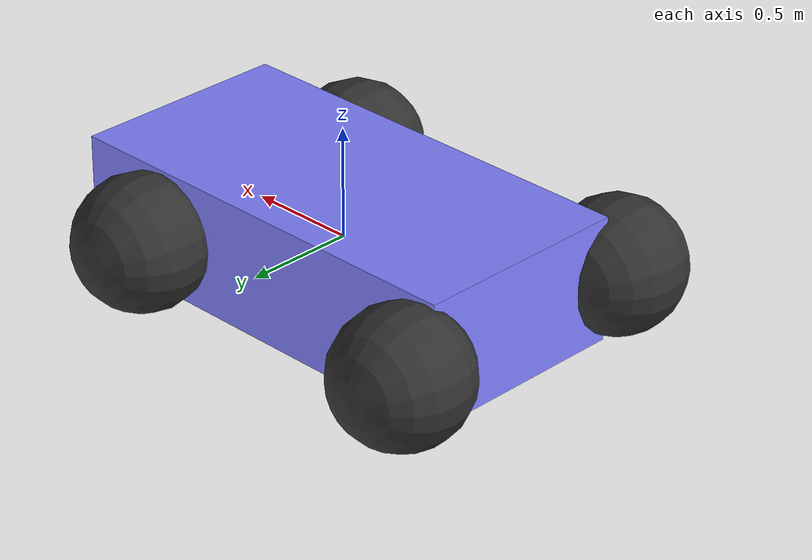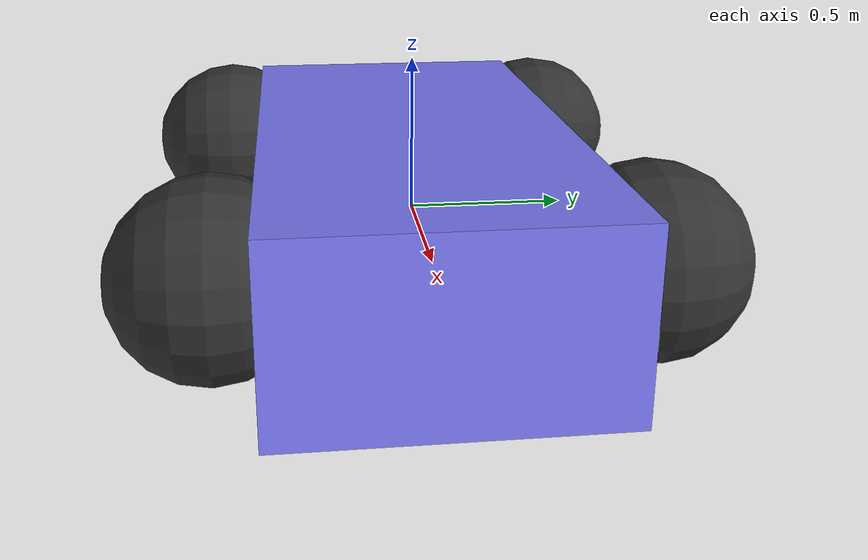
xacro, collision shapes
<?xml version="1.0"?>
<robot name="glados" xmlns:xacro="http://www.ros.org/wiki/xacro">

  <!-- Constants -->
  <xacro:property name="base_link_mass" value="1.14395"/>
  <xacro:property name="wheel_mass" value="2"/>
  <xacro:property name="wheel_radius" value="0.3"/>
  <xacro:property name="wheel_separation" value="1.25"/>
  <xacro:property name="wheelbase" value="1.511"/>

  <!-- base_link dimensions -->
  <xacro:property name="base_link_length" value="2.01142"/>
  <xacro:property name="base_link_width" value="1.0"/>
  <xacro:property name="base_link_height" value="0.568726"/>

  <!-- Positions -->
  <xacro:property name="base_link_offset_x" value="-0.151427"/>
  <xacro:property name="base_link_offset_z" value="0.175"/>
  <xacro:property name="wheel_offset_z" value="-0.025"/>

  <!-- Colors -->
  <xacro:property name="base_link_color_r" value="0.5"/>
  <xacro:property name="base_link_color_g" value="0.5"/>
  <xacro:property name="base_link_color_b" value="1.0"/>

  <!-- Wheel macros -->
  <xacro:macro name="wheel_inertia" params="mass radius">
    <inertial>
      <mass value="${mass}"/>
      <inertia
        ixx="${(mass/12.0) * (3*radius*radius)}"
        ixy="0"
        ixz="0"
        iyy="${(mass/12.0) * (3*radius*radius)}"
        iyz="0"
        izz="${(mass/2.0) * (radius*radius)}"/>
    </inertial>
  </xacro:macro>

  <!-- Base Footprint -->
  <link name="base_footprint"/>

  <!-- Base Link -->
  <link name="base_link">
    <inertial>
      <mass value="${base_link_mass}"/>
      <inertia
        ixx="0.126164"
        ixy="0"
        ixz="0"
        iyy="0.416519"
        iyz="0"
        izz="0.481014"/>
    </inertial>
    <visual>
      <geometry>
        <box size="${base_link_length} ${base_link_width} ${base_link_height}"/>
      </geometry>
      <material name="base_link_material">
        <color rgba="${base_link_color_r} ${base_link_color_g} ${base_link_color_b} 1"/>
      </material>
    </visual>
    <collision>
      <geometry>
        <box size="${base_link_length} ${base_link_width} ${base_link_height}"/>
      </geometry>
    </collision>
  </link>

  <joint name="base_link_to_base_footprint" type="fixed">
    <parent link="base_footprint"/>
    <child link="base_link"/>
  </joint>

  <!-- Wheel macro -->
  <xacro:macro name="mecanum_wheel" params="prefix side_prefix x y mesh_file fdir1_y">
    <link name="${prefix}_${side_prefix}_wheel">
      <xacro:wheel_inertia mass="${wheel_mass}" radius="${wheel_radius}"/>
      <visual>
        <origin xyz="0 0 0" rpy="1.5707 0 0"/>
        <geometry>
          <mesh filename="${mesh_file}" scale="0.006 0.006 0.006"/>
        </geometry>
        <material name="wheel_material">
          <color rgba="0.2 0.2 0.2 1"/>
        </material>
      </visual>
      <collision>
        <geometry>
          <sphere radius="${wheel_radius}"/>
        </geometry>
      </collision>
    </link>

    <joint name="${prefix}_${side_prefix}_wheel_joint" type="revolute">
      <parent link="base_link"/>
      <child link="${prefix}_${side_prefix}_wheel"/>
      <origin xyz="${x} ${y} 0" rpy="${-pi/2} 0 0"/>
      <axis xyz="0 0 1"/>
      <limit effort="30" velocity="1.0" lower="${-pi/2}" upper="${pi/2}"/>
    </joint>

    <!-- Gazebo-specific elements -->
    <gazebo reference="${prefix}_${side_prefix}_wheel">
      <material>Gazebo/Gray</material>
      <mu1 value="1.0"/>
      <mu2 value="0.0"/>
      <fdir1>${1} ${fdir1_y} 0</fdir1>
    </gazebo>
  </xacro:macro>

  <!-- Create wheels -->
  <xacro:mecanum_wheel prefix="front" side_prefix="left"
    x="0.554283" y="0.625029"
    mesh_file="package://glados_description/models/glados/meshes/mecanum_wheel_left.STL"
    fdir1_y="-1"/>

  <xacro:mecanum_wheel prefix="front" side_prefix="right"
    x="0.554282" y="-0.625029"
    mesh_file="package://glados_description/models/glados/meshes/mecanum_wheel_right.STL"
    fdir1_y="1"/>

  <xacro:mecanum_wheel prefix="rear" side_prefix="left"
    x="-0.957138" y="0.625029"
    mesh_file="package://glados_description/models/glados/meshes/mecanum_wheel_right.STL"
    fdir1_y="1"/>

  <xacro:mecanum_wheel prefix="rear" side_prefix="right"
    x="-0.957138" y="-0.625029"
    mesh_file="package://glados_description/models/glados/meshes/mecanum_wheel_left.STL"
    fdir1_y="-1"/>

  <!-- Gazebo plugin -->
  <gazebo>
    <plugin name="gz::sim::systems::MecanumDrive" filename="gz-sim-mecanum-drive-system">
      <front_left_joint>front_left_wheel_joint</front_left_joint>
      <front_right_joint>front_right_wheel_joint</front_right_joint>
      <back_left_joint>rear_left_wheel_joint</back_left_joint>
      <back_right_joint>rear_right_wheel_joint</back_right_joint>
      <wheel_separation>${wheel_separation}</wheel_separation>
      <wheelbase>${wheelbase}</wheelbase>
      <wheel_radius>${wheel_radius}</wheel_radius>
      <min_acceleration>-5</min_acceleration>
      <max_acceleration>5</max_acceleration>
    </plugin>
  </gazebo>

</robot>
